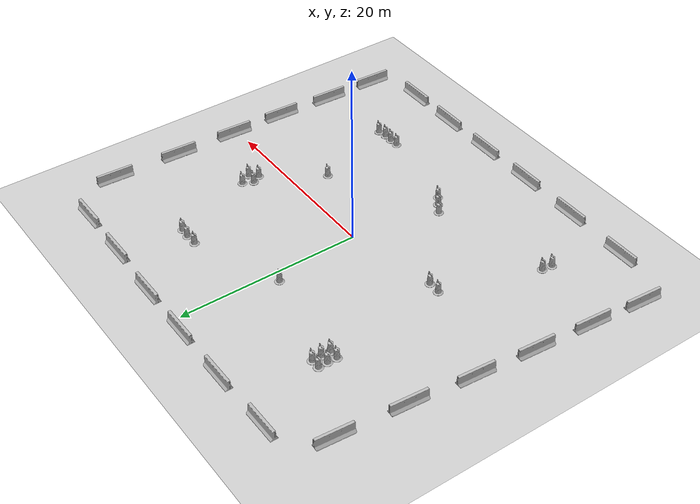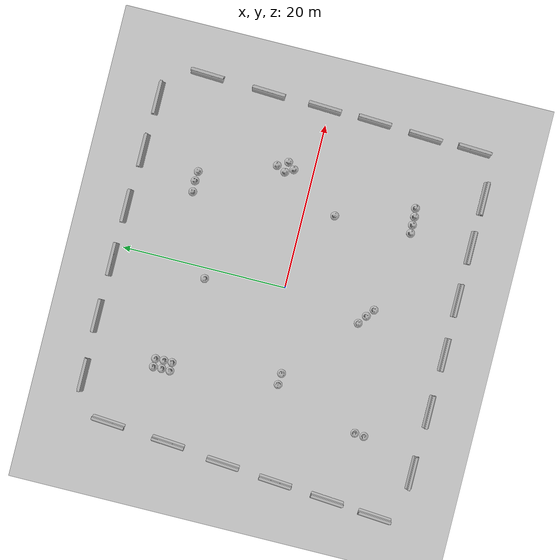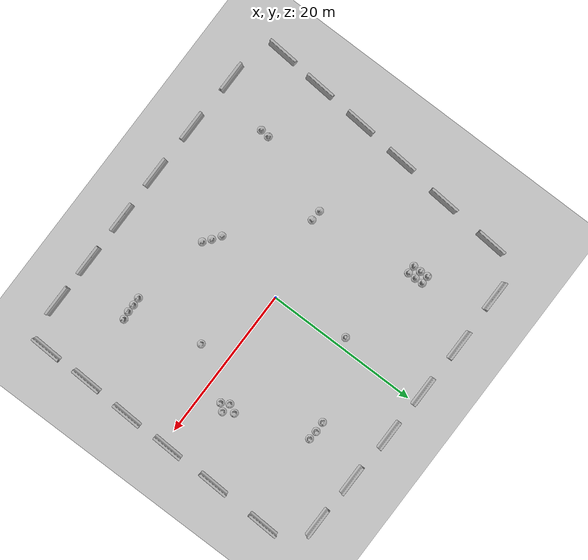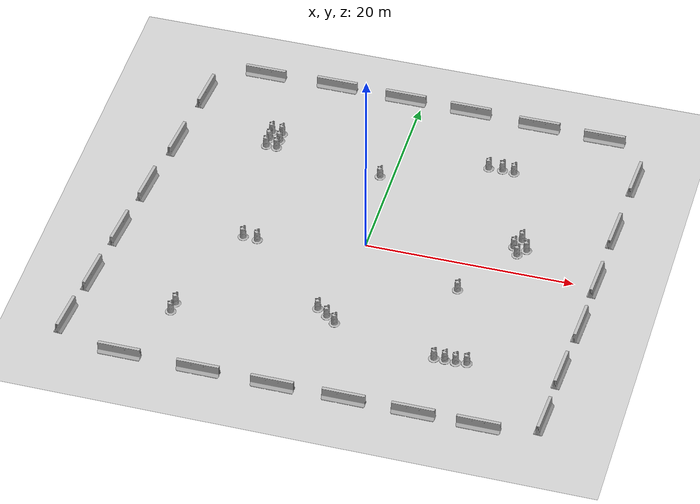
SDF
<sdf version="1.5">
 <world name="default">
  <light name="sun" type="directional">
   <pose>0 0 10 0 -0 0</pose>
   <diffuse>0.8 0.8 0.8 1</diffuse>
   <specular>0.2 0.2 0.2 1</specular>
   <attenuation>
    <range>1000</range>
    <constant>0.9</constant>
    <linear>0.01</linear>
    <quadratic>0.001</quadratic>
   </attenuation>
   <direction>-0.5 0.1 -0.9</direction>
  </light>
  <model name="ground_plane">
   <static>1</static>
   <link name="link">
    <collision name="collision">
     <geometry><plane><normal>0 0 1</normal><size>100 100</size></plane></geometry>
     <surface><friction><ode><mu>100</mu><mu2>50</mu2></ode></friction></surface>
    </collision>
    <visual name="visual">
     <cast_shadows>0</cast_shadows>
     <geometry><plane><normal>0 0 1</normal><size>100 100</size></plane></geometry>
     <material>
      <script><uri>file://media/materials/scripts/gazebo.material</uri><name>Gazebo/Grey</name></script>
     </material>
    </visual>
    <velocity_decay><linear>0</linear><angular>0</angular></velocity_decay>
   </link>
  </model>
  <physics type="ode">
   <max_step_size>0.001</max_step_size>
   <real_time_factor>1</real_time_factor>
   <real_time_update_rate>1000</real_time_update_rate>
   <gravity>0 0 -9.8</gravity>
   <magnetic_field>5.5645e-06 2.28758e-05 -4.23884e-05</magnetic_field>
  </physics>
  <scene><ambient>0.4 0.4 0.4 1</ambient><background>0.7 0.7 0.7 1</background><shadows>1</shadows></scene>
  <spherical_coordinates>
   <surface_model>EARTH_WGS84</surface_model>
   <latitude_deg>0</latitude_deg>
   <longitude_deg>0</longitude_deg>
   <elevation>0</elevation>
   <heading_deg>0</heading_deg>
  </spherical_coordinates>
  <model name="Construction Barrel">
   <link name="link">
    <inertial>
     <pose>0 0 0.4 0 -0 0</pose>
     <mass>500</mass>
     <inertia><ixx>51.2096</ixx><iyy>51.2096</iyy><izz>25</izz><ixy>0</ixy><ixz>0</ixz><iyz>0</iyz></inertia>
    </inertial>
    <collision name="collision">
     <geometry><mesh><uri>model://construction_barrel/meshes/construction_barrel.dae</uri></mesh></geometry>
    </collision>
    <visual name="visual">
     <geometry><mesh><uri>model://construction_barrel/meshes/construction_barrel.dae</uri></mesh></geometry>
    </visual>
    <velocity_decay><linear>0</linear><angular>0</angular></velocity_decay>
   </link>
   <pose>-0.937359 -10.2679 -2e-06 -7e-06 -4e-06 -0.002338</pose>
   <static>0</static>
  </model>
  <model name="Construction Barrel_1">
   <link name="link">
    <inertial>
     <pose>0 0 0.4 0 -0 0</pose>
     <mass>500</mass>
     <inertia><ixx>51.2096</ixx><iyy>51.2096</iyy><izz>25</izz><ixy>0</ixy><ixz>0</ixz><iyz>0</iyz></inertia>
    </inertial>
    <collision name="collision">
     <geometry><mesh><uri>model://construction_barrel/meshes/construction_barrel.dae</uri></mesh></geometry>
    </collision>
    <visual name="visual">
     <geometry><mesh><uri>model://construction_barrel/meshes/construction_barrel.dae</uri></mesh></geometry>
    </visual>
    <velocity_decay><linear>0</linear><angular>0</angular></velocity_decay>
   </link>
   <pose>13.0391 -12.8544 -2e-06 -7e-06 -4e-06 -0.002299</pose>
   <static>0</static>
  </model>
  <model name="Construction Barrel_3">
   <link name="link">
    <inertial>
     <pose>0 0 0.4 0 -0 0</pose>
     <mass>500</mass>
     <inertia><ixx>51.2096</ixx><iyy>51.2096</iyy><izz>25</izz><ixy>0</ixy><ixz>0</ixz><iyz>0</iyz></inertia>
    </inertial>
    <collision name="collision">
     <geometry><mesh><uri>model://construction_barrel/meshes/construction_barrel.dae</uri></mesh></geometry>
    </collision>
    <visual name="visual">
     <geometry><mesh><uri>model://construction_barrel/meshes/construction_barrel.dae</uri></mesh></geometry>
    </visual>
    <velocity_decay><linear>0</linear><angular>0</angular></velocity_decay>
   </link>
   <pose>9.83748 13.5901 -2e-06 -7e-06 -4e-06 -0.002089</pose>
   <static>0</static>
  </model>
  <model name="Construction Barrel_4">
   <link name="link">
    <inertial>
     <pose>0 0 0.4 0 -0 0</pose>
     <mass>500</mass>
     <inertia><ixx>51.2096</ixx><iyy>51.2096</iyy><izz>25</izz><ixy>0</ixy><ixz>0</ixz><iyz>0</iyz></inertia>
    </inertial>
    <collision name="collision">
     <geometry><mesh><uri>model://construction_barrel/meshes/construction_barrel.dae</uri></mesh></geometry>
    </collision>
    <visual name="visual">
     <geometry><mesh><uri>model://construction_barrel/meshes/construction_barrel.dae</uri></mesh></geometry>
    </visual>
    <velocity_decay><linear>0</linear><angular>0</angular></velocity_decay>
   </link>
   <pose>9.80969 -3.68033 -2e-06 -7e-06 -4e-06 -0.001935</pose>
   <static>0</static>
  </model>
  <model name="Construction Barrel_6">
   <link name="link">
    <inertial>
     <pose>0 0 0.4 0 -0 0</pose>
     <mass>500</mass>
     <inertia><ixx>51.2096</ixx><iyy>51.2096</iyy><izz>25</izz><ixy>0</ixy><ixz>0</ixz><iyz>0</iyz></inertia>
    </inertial>
    <collision name="collision">
     <geometry><mesh><uri>model://construction_barrel/meshes/construction_barrel.dae</uri></mesh></geometry>
    </collision>
    <visual name="visual">
     <geometry><mesh><uri>model://construction_barrel/meshes/construction_barrel.dae</uri></mesh></geometry>
    </visual>
    <velocity_decay><linear>0</linear><angular>0</angular></velocity_decay>
   </link>
   <pose>-13.0174 13.0312 0 0 0 -0.059293</pose>
   <static>0</static>
  </model>
  <model name="Construction Barrel_7">
   <link name="link">
    <inertial>
     <pose>0 0 0.4 0 -0 0</pose>
     <mass>500</mass>
     <inertia><ixx>51.2096</ixx><iyy>51.2096</iyy><izz>25</izz><ixy>0</ixy><ixz>0</ixz><iyz>0</iyz></inertia>
    </inertial>
    <collision name="collision">
     <geometry><mesh><uri>model://construction_barrel/meshes/construction_barrel.dae</uri></mesh></geometry>
    </collision>
    <visual name="visual">
     <geometry><mesh><uri>model://construction_barrel/meshes/construction_barrel.dae</uri></mesh></geometry>
    </visual>
    <velocity_decay><linear>0</linear><angular>0</angular></velocity_decay>
   </link>
   <pose>-10.0587 -2.07574 0 0 0 -0.001909</pose>
   <static>0</static>
  </model>
  <model name="Construction Barrel_9">
   <link name="link">
    <inertial>
     <pose>0 0 0.4 0 -0 0</pose>
     <mass>500</mass>
     <inertia><ixx>51.2096</ixx><iyy>51.2096</iyy><izz>25</izz><ixy>0</ixy><ixz>0</ixz><iyz>0</iyz></inertia>
    </inertial>
    <collision name="collision">
     <geometry><mesh><uri>model://construction_barrel/meshes/construction_barrel.dae</uri></mesh></geometry>
    </collision>
    <visual name="visual">
     <geometry><mesh><uri>model://construction_barrel/meshes/construction_barrel.dae</uri></mesh></geometry>
    </visual>
    <velocity_decay><linear>0</linear><angular>0</angular></velocity_decay>
   </link>
   <pose>-14.8784 -12.3318 -3e-06 -6e-06 -5e-06 -0.001776</pose>
   <static>0</static>
  </model>
  <model name="Construction Barrel_12">
   <link name="link">
    <inertial>
     <pose>0 0 0.4 0 -0 0</pose>
     <mass>500</mass>
     <inertia><ixx>51.2096</ixx><iyy>51.2096</iyy><izz>25</izz><ixy>0</ixy><ixz>0</ixz><iyz>0</iyz></inertia>
    </inertial>
    <collision name="collision">
     <geometry><mesh><uri>model://construction_barrel/meshes/construction_barrel.dae</uri></mesh></geometry>
    </collision>
    <visual name="visual">
     <geometry><mesh><uri>model://construction_barrel/meshes/construction_barrel.dae</uri></mesh></geometry>
    </visual>
    <velocity_decay><linear>0</linear><angular>0</angular></velocity_decay>
   </link>
   <pose>14.7254 3.24195 -1e-06 1e-06 -9e-06 -0.001602</pose>
   <static>0</static>
  </model>
  <model name="Construction Barrel_16">
   <link name="link">
    <inertial>
     <pose>0 0 0.4 0 -0 0</pose>
     <mass>500</mass>
     <inertia><ixx>51.2096</ixx><iyy>51.2096</iyy><izz>25</izz><ixy>0</ixy><ixz>0</ixz><iyz>0</iyz></inertia>
    </inertial>
    <collision name="collision">
     <geometry><mesh><uri>model://construction_barrel/meshes/construction_barrel.dae</uri></mesh></geometry>
    </collision>
    <visual name="visual">
     <geometry><mesh><uri>model://construction_barrel/meshes/construction_barrel.dae</uri></mesh></geometry>
    </visual>
    <velocity_decay><linear>0</linear><angular>0</angular></velocity_decay>
   </link>
   <pose>-1.25815 9.63283 -1e-06 3e-06 -2e-06 -0.001346</pose>
   <static>0</static>
  </model>
  <model name="jersey_barrier">
   <static>1</static>
   <link name="link">
    <visual name="visual">
     <geometry><mesh><uri>model://jersey_barrier/meshes/jersey_barrier.dae</uri></mesh></geometry>
    </visual>
    <collision name="upright">
     <pose>0 0 0.5715 0 -0 0</pose>
     <geometry><box><size>4.06542 0.3063 1.143</size></box></geometry>
    </collision>
    <collision name="base">
     <pose>0 0 0.032258 0 -0 0</pose>
     <geometry><box><size>4.06542 0.8107 0.064516</size></box></geometry>
    </collision>
    <collision name="base2">
     <pose>0 0 0.1 0 -0 0</pose>
     <geometry><box><size>4.06542 0.65 0.1</size></box></geometry>
    </collision>
    <collision name="base3">
     <pose>0 0 0.2 0 -0 0</pose>
     <geometry><box><size>4.06542 0.5 0.1</size></box></geometry>
    </collision>
    <collision name="left-angle">
     <pose>0 -0.224 0.2401 0.9 -0 0</pose>
     <geometry><box><size>4.06542 0.5 0.064516</size></box></geometry>
    </collision>
    <collision name="right-angle">
     <pose>0 0.224 0.2401 -0.9 0 0</pose>
     <geometry><box><size>4.06542 0.5 0.064516</size></box></geometry>
    </collision>
    <velocity_decay><linear>0</linear><angular>0</angular></velocity_decay>
   </link>
   <pose>-8.69718 21.0256 0 0 -0 0</pose>
  </model>
  <model name="jersey_barrier_0">
   <static>1</static>
   <link name="link">
    <visual name="visual">
     <geometry><mesh><uri>model://jersey_barrier/meshes/jersey_barrier.dae</uri></mesh></geometry>
    </visual>
    <collision name="upright">
     <pose>0 0 0.5715 0 -0 0</pose>
     <geometry><box><size>4.06542 0.3063 1.143</size></box></geometry>
    </collision>
    <collision name="base">
     <pose>0 0 0.032258 0 -0 0</pose>
     <geometry><box><size>4.06542 0.8107 0.064516</size></box></geometry>
    </collision>
    <collision name="base2">
     <pose>0 0 0.1 0 -0 0</pose>
     <geometry><box><size>4.06542 0.65 0.1</size></box></geometry>
    </collision>
    <collision name="base3">
     <pose>0 0 0.2 0 -0 0</pose>
     <geometry><box><size>4.06542 0.5 0.1</size></box></geometry>
    </collision>
    <collision name="left-angle">
     <pose>0 -0.224 0.2401 0.9 -0 0</pose>
     <geometry><box><size>4.06542 0.5 0.064516</size></box></geometry>
    </collision>
    <collision name="right-angle">
     <pose>0 0.224 0.2401 -0.9 0 0</pose>
     <geometry><box><size>4.06542 0.5 0.064516</size></box></geometry>
    </collision>
    <velocity_decay><linear>0</linear><angular>0</angular></velocity_decay>
   </link>
   <pose>-15.9229 20.8921 0 0 -0 0</pose>
  </model>
  <model name="jersey_barrier_1">
   <static>1</static>
   <link name="link">
    <visual name="visual">
     <geometry><mesh><uri>model://jersey_barrier/meshes/jersey_barrier.dae</uri></mesh></geometry>
    </visual>
    <collision name="upright">
     <pose>0 0 0.5715 0 -0 0</pose>
     <geometry><box><size>4.06542 0.3063 1.143</size></box></geometry>
    </collision>
    <collision name="base">
     <pose>0 0 0.032258 0 -0 0</pose>
     <geometry><box><size>4.06542 0.8107 0.064516</size></box></geometry>
    </collision>
    <collision name="base2">
     <pose>0 0 0.1 0 -0 0</pose>
     <geometry><box><size>4.06542 0.65 0.1</size></box></geometry>
    </collision>
    <collision name="base3">
     <pose>0 0 0.2 0 -0 0</pose>
     <geometry><box><size>4.06542 0.5 0.1</size></box></geometry>
    </collision>
    <collision name="left-angle">
     <pose>0 -0.224 0.2401 0.9 -0 0</pose>
     <geometry><box><size>4.06542 0.5 0.064516</size></box></geometry>
    </collision>
    <collision name="right-angle">
     <pose>0 0.224 0.2401 -0.9 0 0</pose>
     <geometry><box><size>4.06542 0.5 0.064516</size></box></geometry>
    </collision>
    <velocity_decay><linear>0</linear><angular>0</angular></velocity_decay>
   </link>
   <pose>-23.4173 -10.9848 0 0 -0 1.49459</pose>
  </model>
  <model name="jersey_barrier_2">
   <static>1</static>
   <link name="link">
    <visual name="visual">
     <geometry><mesh><uri>model://jersey_barrier/meshes/jersey_barrier.dae</uri></mesh></geometry>
    </visual>
    <collision name="upright">
     <pose>0 0 0.5715 0 -0 0</pose>
     <geometry><box><size>4.06542 0.3063 1.143</size></box></geometry>
    </collision>
    <collision name="base">
     <pose>0 0 0.032258 0 -0 0</pose>
     <geometry><box><size>4.06542 0.8107 0.064516</size></box></geometry>
    </collision>
    <collision name="base2">
     <pose>0 0 0.1 0 -0 0</pose>
     <geometry><box><size>4.06542 0.65 0.1</size></box></geometry>
    </collision>
    <collision name="base3">
     <pose>0 0 0.2 0 -0 0</pose>
     <geometry><box><size>4.06542 0.5 0.1</size></box></geometry>
    </collision>
    <collision name="left-angle">
     <pose>0 -0.224 0.2401 0.9 -0 0</pose>
     <geometry><box><size>4.06542 0.5 0.064516</size></box></geometry>
    </collision>
    <collision name="right-angle">
     <pose>0 0.224 0.2401 -0.9 0 0</pose>
     <geometry><box><size>4.06542 0.5 0.064516</size></box></geometry>
    </collision>
    <velocity_decay><linear>0</linear><angular>0</angular></velocity_decay>
   </link>
   <pose>-17.8085 -20.1254 0 0 -0 0</pose>
  </model>
  <model name="jersey_barrier_3">
   <static>1</static>
   <link name="link">
    <visual name="visual">
     <geometry><mesh><uri>model://jersey_barrier/meshes/jersey_barrier.dae</uri></mesh></geometry>
    </visual>
    <collision name="upright">
     <pose>0 0 0.5715 0 -0 0</pose>
     <geometry><box><size>4.06542 0.3063 1.143</size></box></geometry>
    </collision>
    <collision name="base">
     <pose>0 0 0.032258 0 -0 0</pose>
     <geometry><box><size>4.06542 0.8107 0.064516</size></box></geometry>
    </collision>
    <collision name="base2">
     <pose>0 0 0.1 0 -0 0</pose>
     <geometry><box><size>4.06542 0.65 0.1</size></box></geometry>
    </collision>
    <collision name="base3">
     <pose>0 0 0.2 0 -0 0</pose>
     <geometry><box><size>4.06542 0.5 0.1</size></box></geometry>
    </collision>
    <collision name="left-angle">
     <pose>0 -0.224 0.2401 0.9 -0 0</pose>
     <geometry><box><size>4.06542 0.5 0.064516</size></box></geometry>
    </collision>
    <collision name="right-angle">
     <pose>0 0.224 0.2401 -0.9 0 0</pose>
     <geometry><box><size>4.06542 0.5 0.064516</size></box></geometry>
    </collision>
    <velocity_decay><linear>0</linear><angular>0</angular></velocity_decay>
   </link>
   <pose>10.0069 -20.4469 0 0 -0 0</pose>
  </model>
  <model name="jersey_barrier_4">
   <static>1</static>
   <link name="link">
    <visual name="visual">
     <geometry><mesh><uri>model://jersey_barrier/meshes/jersey_barrier.dae</uri></mesh></geometry>
    </visual>
    <collision name="upright">
     <pose>0 0 0.5715 0 -0 0</pose>
     <geometry><box><size>4.06542 0.3063 1.143</size></box></geometry>
    </collision>
    <collision name="base">
     <pose>0 0 0.032258 0 -0 0</pose>
     <geometry><box><size>4.06542 0.8107 0.064516</size></box></geometry>
    </collision>
    <collision name="base2">
     <pose>0 0 0.1 0 -0 0</pose>
     <geometry><box><size>4.06542 0.65 0.1</size></box></geometry>
    </collision>
    <collision name="base3">
     <pose>0 0 0.2 0 -0 0</pose>
     <geometry><box><size>4.06542 0.5 0.1</size></box></geometry>
    </collision>
    <collision name="left-angle">
     <pose>0 -0.224 0.2401 0.9 -0 0</pose>
     <geometry><box><size>4.06542 0.5 0.064516</size></box></geometry>
    </collision>
    <collision name="right-angle">
     <pose>0 0.224 0.2401 -0.9 0 0</pose>
     <geometry><box><size>4.06542 0.5 0.064516</size></box></geometry>
    </collision>
    <velocity_decay><linear>0</linear><angular>0</angular></velocity_decay>
   </link>
   <pose>21.6079 -11.909 0 0 -0 1.52298</pose>
  </model>
  <audio><device>default</device></audio>
  <model name="jersey_barrier_2_clone">
   <static>1</static>
   <link name="link">
    <visual name="visual">
     <geometry><mesh><uri>model://jersey_barrier/meshes/jersey_barrier.dae</uri></mesh></geometry>
    </visual>
    <collision name="upright">
     <pose>0 0 0.5715 0 -0 0</pose>
     <geometry><box><size>4.06542 0.3063 1.143</size></box></geometry>
    </collision>
    <collision name="base">
     <pose>0 0 0.032258 0 -0 0</pose>
     <geometry><box><size>4.06542 0.8107 0.064516</size></box></geometry>
    </collision>
    <collision name="base2">
     <pose>0 0 0.1 0 -0 0</pose>
     <geometry><box><size>4.06542 0.65 0.1</size></box></geometry>
    </collision>
    <collision name="base3">
     <pose>0 0 0.2 0 -0 0</pose>
     <geometry><box><size>4.06542 0.5 0.1</size></box></geometry>
    </collision>
    <collision name="left-angle">
     <pose>0 -0.224 0.2401 0.9 -0 0</pose>
     <geometry><box><size>4.06542 0.5 0.064516</size></box></geometry>
    </collision>
    <collision name="right-angle">
     <pose>0 0.224 0.2401 -0.9 0 0</pose>
     <geometry><box><size>4.06542 0.5 0.064516</size></box></geometry>
    </collision>
    <velocity_decay><linear>0</linear><angular>0</angular></velocity_decay>
   </link>
   <pose>-10.2306 -20.3476 0 0 -0 0</pose>
  </model>
  <model name="jersey_barrier_2_clone_0">
   <static>1</static>
   <link name="link">
    <visual name="visual">
     <geometry><mesh><uri>model://jersey_barrier/meshes/jersey_barrier.dae</uri></mesh></geometry>
    </visual>
    <collision name="upright">
     <pose>0 0 0.5715 0 -0 0</pose>
     <geometry><box><size>4.06542 0.3063 1.143</size></box></geometry>
    </collision>
    <collision name="base">
     <pose>0 0 0.032258 0 -0 0</pose>
     <geometry><box><size>4.06542 0.8107 0.064516</size></box></geometry>
    </collision>
    <collision name="base2">
     <pose>0 0 0.1 0 -0 0</pose>
     <geometry><box><size>4.06542 0.65 0.1</size></box></geometry>
    </collision>
    <collision name="base3">
     <pose>0 0 0.2 0 -0 0</pose>
     <geometry><box><size>4.06542 0.5 0.1</size></box></geometry>
    </collision>
    <collision name="left-angle">
     <pose>0 -0.224 0.2401 0.9 -0 0</pose>
     <geometry><box><size>4.06542 0.5 0.064516</size></box></geometry>
    </collision>
    <collision name="right-angle">
     <pose>0 0.224 0.2401 -0.9 0 0</pose>
     <geometry><box><size>4.06542 0.5 0.064516</size></box></geometry>
    </collision>
    <velocity_decay><linear>0</linear><angular>0</angular></velocity_decay>
   </link>
   <pose>-3.17145 -20.4608 0 0 -0 0</pose>
  </model>
  <model name="jersey_barrier_2_clone_1">
   <static>1</static>
   <link name="link">
    <visual name="visual">
     <geometry><mesh><uri>model://jersey_barrier/meshes/jersey_barrier.dae</uri></mesh></geometry>
    </visual>
    <collision name="upright">
     <pose>0 0 0.5715 0 -0 0</pose>
     <geometry><box><size>4.06542 0.3063 1.143</size></box></geometry>
    </collision>
    <collision name="base">
     <pose>0 0 0.032258 0 -0 0</pose>
     <geometry><box><size>4.06542 0.8107 0.064516</size></box></geometry>
    </collision>
    <collision name="base2">
     <pose>0 0 0.1 0 -0 0</pose>
     <geometry><box><size>4.06542 0.65 0.1</size></box></geometry>
    </collision>
    <collision name="base3">
     <pose>0 0 0.2 0 -0 0</pose>
     <geometry><box><size>4.06542 0.5 0.1</size></box></geometry>
    </collision>
    <collision name="left-angle">
     <pose>0 -0.224 0.2401 0.9 -0 0</pose>
     <geometry><box><size>4.06542 0.5 0.064516</size></box></geometry>
    </collision>
    <collision name="right-angle">
     <pose>0 0.224 0.2401 -0.9 0 0</pose>
     <geometry><box><size>4.06542 0.5 0.064516</size></box></geometry>
    </collision>
    <velocity_decay><linear>0</linear><angular>0</angular></velocity_decay>
   </link>
   <pose>3.51104 -20.411 0 0 -0 0</pose>
  </model>
  <model name="jersey_barrier_1_clone">
   <static>1</static>
   <link name="link">
    <visual name="visual">
     <geometry><mesh><uri>model://jersey_barrier/meshes/jersey_barrier.dae</uri></mesh></geometry>
    </visual>
    <collision name="upright">
     <pose>0 0 0.5715 0 -0 0</pose>
     <geometry><box><size>4.06542 0.3063 1.143</size></box></geometry>
    </collision>
    <collision name="base">
     <pose>0 0 0.032258 0 -0 0</pose>
     <geometry><box><size>4.06542 0.8107 0.064516</size></box></geometry>
    </collision>
    <collision name="base2">
     <pose>0 0 0.1 0 -0 0</pose>
     <geometry><box><size>4.06542 0.65 0.1</size></box></geometry>
    </collision>
    <collision name="base3">
     <pose>0 0 0.2 0 -0 0</pose>
     <geometry><box><size>4.06542 0.5 0.1</size></box></geometry>
    </collision>
    <collision name="left-angle">
     <pose>0 -0.224 0.2401 0.9 -0 0</pose>
     <geometry><box><size>4.06542 0.5 0.064516</size></box></geometry>
    </collision>
    <collision name="right-angle">
     <pose>0 0.224 0.2401 -0.9 0 0</pose>
     <geometry><box><size>4.06542 0.5 0.064516</size></box></geometry>
    </collision>
    <velocity_decay><linear>0</linear><angular>0</angular></velocity_decay>
   </link>
   <pose>-22.8678 -4.46741 0 0 -0 1.49459</pose>
  </model>
  <model name="jersey_barrier_1_clone_0">
   <static>1</static>
   <link name="link">
    <visual name="visual">
     <geometry><mesh><uri>model://jersey_barrier/meshes/jersey_barrier.dae</uri></mesh></geometry>
    </visual>
    <collision name="upright">
     <pose>0 0 0.5715 0 -0 0</pose>
     <geometry><box><size>4.06542 0.3063 1.143</size></box></geometry>
    </collision>
    <collision name="base">
     <pose>0 0 0.032258 0 -0 0</pose>
     <geometry><box><size>4.06542 0.8107 0.064516</size></box></geometry>
    </collision>
    <collision name="base2">
     <pose>0 0 0.1 0 -0 0</pose>
     <geometry><box><size>4.06542 0.65 0.1</size></box></geometry>
    </collision>
    <collision name="base3">
     <pose>0 0 0.2 0 -0 0</pose>
     <geometry><box><size>4.06542 0.5 0.1</size></box></geometry>
    </collision>
    <collision name="left-angle">
     <pose>0 -0.224 0.2401 0.9 -0 0</pose>
     <geometry><box><size>4.06542 0.5 0.064516</size></box></geometry>
    </collision>
    <collision name="right-angle">
     <pose>0 0.224 0.2401 -0.9 0 0</pose>
     <geometry><box><size>4.06542 0.5 0.064516</size></box></geometry>
    </collision>
    <velocity_decay><linear>0</linear><angular>0</angular></velocity_decay>
   </link>
   <pose>-22.2377 2.14107 0 0 -0 1.49459</pose>
  </model>
  <model name="jersey_barrier_1_clone_1">
   <static>1</static>
   <link name="link">
    <visual name="visual">
     <geometry><mesh><uri>model://jersey_barrier/meshes/jersey_barrier.dae</uri></mesh></geometry>
    </visual>
    <collision name="upright">
     <pose>0 0 0.5715 0 -0 0</pose>
     <geometry><box><size>4.06542 0.3063 1.143</size></box></geometry>
    </collision>
    <collision name="base">
     <pose>0 0 0.032258 0 -0 0</pose>
     <geometry><box><size>4.06542 0.8107 0.064516</size></box></geometry>
    </collision>
    <collision name="base2">
     <pose>0 0 0.1 0 -0 0</pose>
     <geometry><box><size>4.06542 0.65 0.1</size></box></geometry>
    </collision>
    <collision name="base3">
     <pose>0 0 0.2 0 -0 0</pose>
     <geometry><box><size>4.06542 0.5 0.1</size></box></geometry>
    </collision>
    <collision name="left-angle">
     <pose>0 -0.224 0.2401 0.9 -0 0</pose>
     <geometry><box><size>4.06542 0.5 0.064516</size></box></geometry>
    </collision>
    <collision name="right-angle">
     <pose>0 0.224 0.2401 -0.9 0 0</pose>
     <geometry><box><size>4.06542 0.5 0.064516</size></box></geometry>
    </collision>
    <velocity_decay><linear>0</linear><angular>0</angular></velocity_decay>
   </link>
   <pose>-21.4121 9.09407 0 0 -0 1.49459</pose>
  </model>
  <model name="jersey_barrier_1_clone_2">
   <static>1</static>
   <link name="link">
    <visual name="visual">
     <geometry><mesh><uri>model://jersey_barrier/meshes/jersey_barrier.dae</uri></mesh></geometry>
    </visual>
    <collision name="upright">
     <pose>0 0 0.5715 0 -0 0</pose>
     <geometry><box><size>4.06542 0.3063 1.143</size></box></geometry>
    </collision>
    <collision name="base">
     <pose>0 0 0.032258 0 -0 0</pose>
     <geometry><box><size>4.06542 0.8107 0.064516</size></box></geometry>
    </collision>
    <collision name="base2">
     <pose>0 0 0.1 0 -0 0</pose>
     <geometry><box><size>4.06542 0.65 0.1</size></box></geometry>
    </collision>
    <collision name="base3">
     <pose>0 0 0.2 0 -0 0</pose>
     <geometry><box><size>4.06542 0.5 0.1</size></box></geometry>
    </collision>
    <collision name="left-angle">
     <pose>0 -0.224 0.2401 0.9 -0 0</pose>
     <geometry><box><size>4.06542 0.5 0.064516</size></box></geometry>
    </collision>
    <collision name="right-angle">
     <pose>0 0.224 0.2401 -0.9 0 0</pose>
     <geometry><box><size>4.06542 0.5 0.064516</size></box></geometry>
    </collision>
    <velocity_decay><linear>0</linear><angular>0</angular></velocity_decay>
   </link>
   <pose>-20.7737 16.6245 0 0 -0 1.49459</pose>
  </model>
  <model name="jersey_barrier_3_clone">
   <static>1</static>
   <link name="link">
    <visual name="visual">
     <geometry><mesh><uri>model://jersey_barrier/meshes/jersey_barrier.dae</uri></mesh></geometry>
    </visual>
    <collision name="upright">
     <pose>0 0 0.5715 0 -0 0</pose>
     <geometry><box><size>4.06542 0.3063 1.143</size></box></geometry>
    </collision>
    <collision name="base">
     <pose>0 0 0.032258 0 -0 0</pose>
     <geometry><box><size>4.06542 0.8107 0.064516</size></box></geometry>
    </collision>
    <collision name="base2">
     <pose>0 0 0.1 0 -0 0</pose>
     <geometry><box><size>4.06542 0.65 0.1</size></box></geometry>
    </collision>
    <collision name="base3">
     <pose>0 0 0.2 0 -0 0</pose>
     <geometry><box><size>4.06542 0.5 0.1</size></box></geometry>
    </collision>
    <collision name="left-angle">
     <pose>0 -0.224 0.2401 0.9 -0 0</pose>
     <geometry><box><size>4.06542 0.5 0.064516</size></box></geometry>
    </collision>
    <collision name="right-angle">
     <pose>0 0.224 0.2401 -0.9 0 0</pose>
     <geometry><box><size>4.06542 0.5 0.064516</size></box></geometry>
    </collision>
    <velocity_decay><linear>0</linear><angular>0</angular></velocity_decay>
   </link>
   <pose>-1.70102 20.9112 0 0 -0 0</pose>
  </model>
  <model name="jersey_barrier_3_clone_0">
   <static>1</static>
   <link name="link">
    <visual name="visual">
     <geometry><mesh><uri>model://jersey_barrier/meshes/jersey_barrier.dae</uri></mesh></geometry>
    </visual>
    <collision name="upright">
     <pose>0 0 0.5715 0 -0 0</pose>
     <geometry><box><size>4.06542 0.3063 1.143</size></box></geometry>
    </collision>
    <collision name="base">
     <pose>0 0 0.032258 0 -0 0</pose>
     <geometry><box><size>4.06542 0.8107 0.064516</size></box></geometry>
    </collision>
    <collision name="base2">
     <pose>0 0 0.1 0 -0 0</pose>
     <geometry><box><size>4.06542 0.65 0.1</size></box></geometry>
    </collision>
    <collision name="base3">
     <pose>0 0 0.2 0 -0 0</pose>
     <geometry><box><size>4.06542 0.5 0.1</size></box></geometry>
    </collision>
    <collision name="left-angle">
     <pose>0 -0.224 0.2401 0.9 -0 0</pose>
     <geometry><box><size>4.06542 0.5 0.064516</size></box></geometry>
    </collision>
    <collision name="right-angle">
     <pose>0 0.224 0.2401 -0.9 0 0</pose>
     <geometry><box><size>4.06542 0.5 0.064516</size></box></geometry>
    </collision>
    <velocity_decay><linear>0</linear><angular>0</angular></velocity_decay>
   </link>
   <pose>4.89552 20.8004 0 0 -0 0</pose>
  </model>
  <model name="jersey_barrier_3_clone_1">
   <static>1</static>
   <link name="link">
    <visual name="visual">
     <geometry><mesh><uri>model://jersey_barrier/meshes/jersey_barrier.dae</uri></mesh></geometry>
    </visual>
    <collision name="upright">
     <pose>0 0 0.5715 0 -0 0</pose>
     <geometry><box><size>4.06542 0.3063 1.143</size></box></geometry>
    </collision>
    <collision name="base">
     <pose>0 0 0.032258 0 -0 0</pose>
     <geometry><box><size>4.06542 0.8107 0.064516</size></box></geometry>
    </collision>
    <collision name="base2">
     <pose>0 0 0.1 0 -0 0</pose>
     <geometry><box><size>4.06542 0.65 0.1</size></box></geometry>
    </collision>
    <collision name="base3">
     <pose>0 0 0.2 0 -0 0</pose>
     <geometry><box><size>4.06542 0.5 0.1</size></box></geometry>
    </collision>
    <collision name="left-angle">
     <pose>0 -0.224 0.2401 0.9 -0 0</pose>
     <geometry><box><size>4.06542 0.5 0.064516</size></box></geometry>
    </collision>
    <collision name="right-angle">
     <pose>0 0.224 0.2401 -0.9 0 0</pose>
     <geometry><box><size>4.06542 0.5 0.064516</size></box></geometry>
    </collision>
    <velocity_decay><linear>0</linear><angular>0</angular></velocity_decay>
   </link>
   <pose>11.8222 20.4653 0 0 -0 0</pose>
  </model>
  <model name="jersey_barrier_4_clone">
   <static>1</static>
   <link name="link">
    <visual name="visual">
     <geometry><mesh><uri>model://jersey_barrier/meshes/jersey_barrier.dae</uri></mesh></geometry>
    </visual>
    <collision name="upright">
     <pose>0 0 0.5715 0 -0 0</pose>
     <geometry><box><size>4.06542 0.3063 1.143</size></box></geometry>
    </collision>
    <collision name="base">
     <pose>0 0 0.032258 0 -0 0</pose>
     <geometry><box><size>4.06542 0.8107 0.064516</size></box></geometry>
    </collision>
    <collision name="base2">
     <pose>0 0 0.1 0 -0 0</pose>
     <geometry><box><size>4.06542 0.65 0.1</size></box></geometry>
    </collision>
    <collision name="base3">
     <pose>0 0 0.2 0 -0 0</pose>
     <geometry><box><size>4.06542 0.5 0.1</size></box></geometry>
    </collision>
    <collision name="left-angle">
     <pose>0 -0.224 0.2401 0.9 -0 0</pose>
     <geometry><box><size>4.06542 0.5 0.064516</size></box></geometry>
    </collision>
    <collision name="right-angle">
     <pose>0 0.224 0.2401 -0.9 0 0</pose>
     <geometry><box><size>4.06542 0.5 0.064516</size></box></geometry>
    </collision>
    <velocity_decay><linear>0</linear><angular>0</angular></velocity_decay>
   </link>
   <pose>21.9591 -5.59202 0 0 -0 1.52298</pose>
  </model>
  <model name="jersey_barrier_4_clone_0">
   <static>1</static>
   <link name="link">
    <visual name="visual">
     <geometry><mesh><uri>model://jersey_barrier/meshes/jersey_barrier.dae</uri></mesh></geometry>
    </visual>
    <collision name="upright">
     <pose>0 0 0.5715 0 -0 0</pose>
     <geometry><box><size>4.06542 0.3063 1.143</size></box></geometry>
    </collision>
    <collision name="base">
     <pose>0 0 0.032258 0 -0 0</pose>
     <geometry><box><size>4.06542 0.8107 0.064516</size></box></geometry>
    </collision>
    <collision name="base2">
     <pose>0 0 0.1 0 -0 0</pose>
     <geometry><box><size>4.06542 0.65 0.1</size></box></geometry>
    </collision>
    <collision name="base3">
     <pose>0 0 0.2 0 -0 0</pose>
     <geometry><box><size>4.06542 0.5 0.1</size></box></geometry>
    </collision>
    <collision name="left-angle">
     <pose>0 -0.224 0.2401 0.9 -0 0</pose>
     <geometry><box><size>4.06542 0.5 0.064516</size></box></geometry>
    </collision>
    <collision name="right-angle">
     <pose>0 0.224 0.2401 -0.9 0 0</pose>
     <geometry><box><size>4.06542 0.5 0.064516</size></box></geometry>
    </collision>
    <velocity_decay><linear>0</linear><angular>0</angular></velocity_decay>
   </link>
   <pose>22.0607 0.586127 0 0 -0 1.52298</pose>
  </model>
  <model name="jersey_barrier_4_clone_1">
   <static>1</static>
   <link name="link">
    <visual name="visual">
     <geometry><mesh><uri>model://jersey_barrier/meshes/jersey_barrier.dae</uri></mesh></geometry>
    </visual>
    <collision name="upright">
     <pose>0 0 0.5715 0 -0 0</pose>
     <geometry><box><size>4.06542 0.3063 1.143</size></box></geometry>
    </collision>
    <collision name="base">
     <pose>0 0 0.032258 0 -0 0</pose>
     <geometry><box><size>4.06542 0.8107 0.064516</size></box></geometry>
    </collision>
    <collision name="base2">
     <pose>0 0 0.1 0 -0 0</pose>
     <geometry><box><size>4.06542 0.65 0.1</size></box></geometry>
    </collision>
    <collision name="base3">
     <pose>0 0 0.2 0 -0 0</pose>
     <geometry><box><size>4.06542 0.5 0.1</size></box></geometry>
    </collision>
    <collision name="left-angle">
     <pose>0 -0.224 0.2401 0.9 -0 0</pose>
     <geometry><box><size>4.06542 0.5 0.064516</size></box></geometry>
    </collision>
    <collision name="right-angle">
     <pose>0 0.224 0.2401 -0.9 0 0</pose>
     <geometry><box><size>4.06542 0.5 0.064516</size></box></geometry>
    </collision>
    <velocity_decay><linear>0</linear><angular>0</angular></velocity_decay>
   </link>
   <pose>22.2227 7.54439 0 0 -0 1.52298</pose>
  </model>
  <model name="jersey_barrier_4_clone_1_clone">
   <static>1</static>
   <link name="link">
    <visual name="visual">
     <geometry><mesh><uri>model://jersey_barrier/meshes/jersey_barrier.dae</uri></mesh></geometry>
    </visual>
    <collision name="upright">
     <pose>0 0 0.5715 0 -0 0</pose>
     <geometry><box><size>4.06542 0.3063 1.143</size></box></geometry>
    </collision>
    <collision name="base">
     <pose>0 0 0.032258 0 -0 0</pose>
     <geometry><box><size>4.06542 0.8107 0.064516</size></box></geometry>
    </collision>
    <collision name="base2">
     <pose>0 0 0.1 0 -0 0</pose>
     <geometry><box><size>4.06542 0.65 0.1</size></box></geometry>
    </collision>
    <collision name="base3">
     <pose>0 0 0.2 0 -0 0</pose>
     <geometry><box><size>4.06542 0.5 0.1</size></box></geometry>
    </collision>
    <collision name="left-angle">
     <pose>0 -0.224 0.2401 0.9 -0 0</pose>
     <geometry><box><size>4.06542 0.5 0.064516</size></box></geometry>
    </collision>
    <collision name="right-angle">
     <pose>0 0.224 0.2401 -0.9 0 0</pose>
     <geometry><box><size>4.06542 0.5 0.064516</size></box></geometry>
    </collision>
    <velocity_decay><linear>0</linear><angular>0</angular></velocity_decay>
   </link>
   <pose>22.4998 15.1658 0 0 -0 1.52298</pose>
  </model>
  <model name="jersey_barrier_3_clone_1_clone">
   <static>1</static>
   <link name="link">
    <visual name="visual">
     <geometry><mesh><uri>model://jersey_barrier/meshes/jersey_barrier.dae</uri></mesh></geometry>
    </visual>
    <collision name="upright">
     <pose>0 0 0.5715 0 -0 0</pose>
     <geometry><box><size>4.06542 0.3063 1.143</size></box></geometry>
    </collision>
    <collision name="base">
     <pose>0 0 0.032258 0 -0 0</pose>
     <geometry><box><size>4.06542 0.8107 0.064516</size></box></geometry>
    </collision>
    <collision name="base2">
     <pose>0 0 0.1 0 -0 0</pose>
     <geometry><box><size>4.06542 0.65 0.1</size></box></geometry>
    </collision>
    <collision name="base3">
     <pose>0 0 0.2 0 -0 0</pose>
     <geometry><box><size>4.06542 0.5 0.1</size></box></geometry>
    </collision>
    <collision name="left-angle">
     <pose>0 -0.224 0.2401 0.9 -0 0</pose>
     <geometry><box><size>4.06542 0.5 0.064516</size></box></geometry>
    </collision>
    <collision name="right-angle">
     <pose>0 0.224 0.2401 -0.9 0 0</pose>
     <geometry><box><size>4.06542 0.5 0.064516</size></box></geometry>
    </collision>
    <velocity_decay><linear>0</linear><angular>0</angular></velocity_decay>
   </link>
   <pose>18.3516 20.2619 0 0 -0 0</pose>
  </model>
  <model name="jersey_barrier_3_clone_2">
   <static>1</static>
   <link name="link">
    <visual name="visual">
     <geometry><mesh><uri>model://jersey_barrier/meshes/jersey_barrier.dae</uri></mesh></geometry>
    </visual>
    <collision name="upright">
     <pose>0 0 0.5715 0 -0 0</pose>
     <geometry><box><size>4.06542 0.3063 1.143</size></box></geometry>
    </collision>
    <collision name="base">
     <pose>0 0 0.032258 0 -0 0</pose>
     <geometry><box><size>4.06542 0.8107 0.064516</size></box></geometry>
    </collision>
    <collision name="base2">
     <pose>0 0 0.1 0 -0 0</pose>
     <geometry><box><size>4.06542 0.65 0.1</size></box></geometry>
    </collision>
    <collision name="base3">
     <pose>0 0 0.2 0 -0 0</pose>
     <geometry><box><size>4.06542 0.5 0.1</size></box></geometry>
    </collision>
    <collision name="left-angle">
     <pose>0 -0.224 0.2401 0.9 -0 0</pose>
     <geometry><box><size>4.06542 0.5 0.064516</size></box></geometry>
    </collision>
    <collision name="right-angle">
     <pose>0 0.224 0.2401 -0.9 0 0</pose>
     <geometry><box><size>4.06542 0.5 0.064516</size></box></geometry>
    </collision>
    <velocity_decay><linear>0</linear><angular>0</angular></velocity_decay>
   </link>
   <pose>16.0664 -20.4923 0 0 -0 0</pose>
  </model>
  <model name="jersey_barrier_4_clone_2">
   <static>1</static>
   <link name="link">
    <visual name="visual">
     <geometry><mesh><uri>model://jersey_barrier/meshes/jersey_barrier.dae</uri></mesh></geometry>
    </visual>
    <collision name="upright">
     <pose>0 0 0.5715 0 -0 0</pose>
     <geometry><box><size>4.06542 0.3063 1.143</size></box></geometry>
    </collision>
    <collision name="base">
     <pose>0 0 0.032258 0 -0 0</pose>
     <geometry><box><size>4.06542 0.8107 0.064516</size></box></geometry>
    </collision>
    <collision name="base2">
     <pose>0 0 0.1 0 -0 0</pose>
     <geometry><box><size>4.06542 0.65 0.1</size></box></geometry>
    </collision>
    <collision name="base3">
     <pose>0 0 0.2 0 -0 0</pose>
     <geometry><box><size>4.06542 0.5 0.1</size></box></geometry>
    </collision>
    <collision name="left-angle">
     <pose>0 -0.224 0.2401 0.9 -0 0</pose>
     <geometry><box><size>4.06542 0.5 0.064516</size></box></geometry>
    </collision>
    <collision name="right-angle">
     <pose>0 0.224 0.2401 -0.9 0 0</pose>
     <geometry><box><size>4.06542 0.5 0.064516</size></box></geometry>
    </collision>
    <velocity_decay><linear>0</linear><angular>0</angular></velocity_decay>
   </link>
   <pose>21.4847 -18 0 0 -0 1.52298</pose>
  </model>
  <model name="jersey_barrier_1_clone_3">
   <static>1</static>
   <link name="link">
    <visual name="visual">
     <geometry><mesh><uri>model://jersey_barrier/meshes/jersey_barrier.dae</uri></mesh></geometry>
    </visual>
    <collision name="upright">
     <pose>0 0 0.5715 0 -0 0</pose>
     <geometry><box><size>4.06542 0.3063 1.143</size></box></geometry>
    </collision>
    <collision name="base">
     <pose>0 0 0.032258 0 -0 0</pose>
     <geometry><box><size>4.06542 0.8107 0.064516</size></box></geometry>
    </collision>
    <collision name="base2">
     <pose>0 0 0.1 0 -0 0</pose>
     <geometry><box><size>4.06542 0.65 0.1</size></box></geometry>
    </collision>
    <collision name="base3">
     <pose>0 0 0.2 0 -0 0</pose>
     <geometry><box><size>4.06542 0.5 0.1</size></box></geometry>
    </collision>
    <collision name="left-angle">
     <pose>0 -0.224 0.2401 0.9 -0 0</pose>
     <geometry><box><size>4.06542 0.5 0.064516</size></box></geometry>
    </collision>
    <collision name="right-angle">
     <pose>0 0.224 0.2401 -0.9 0 0</pose>
     <geometry><box><size>4.06542 0.5 0.064516</size></box></geometry>
    </collision>
    <velocity_decay><linear>0</linear><angular>0</angular></velocity_decay>
   </link>
   <pose>-24 -17 0 0 -0 1.49459</pose>
  </model>
  <model name="Construction Barrel_1_clone">
   <link name="link">
    <inertial>
     <pose>0 0 0.4 0 -0 0</pose>
     <mass>500</mass>
     <inertia><ixx>51.2096</ixx><iyy>51.2096</iyy><izz>25</izz><ixy>0</ixy><ixz>0</ixz><iyz>0</iyz></inertia>
    </inertial>
    <collision name="collision">
     <geometry><mesh><uri>model://construction_barrel/meshes/construction_barrel.dae</uri></mesh></geometry>
    </collision>
    <visual name="visual">
     <geometry><mesh><uri>model://construction_barrel/meshes/construction_barrel.dae</uri></mesh></geometry>
    </visual>
    <velocity_decay><linear>0</linear><angular>0</angular></velocity_decay>
   </link>
   <pose>12.0121 -12.993 0 0 -0 0.015482</pose>
   <static>0</static>
  </model>
  <model name="Construction Barrel_1_clone_0">
   <link name="link">
    <inertial>
     <pose>0 0 0.4 0 -0 0</pose>
     <mass>500</mass>
     <inertia><ixx>51.2096</ixx><iyy>51.2096</iyy><izz>25</izz><ixy>0</ixy><ixz>0</ixz><iyz>0</iyz></inertia>
    </inertial>
    <collision name="collision">
     <geometry><mesh><uri>model://construction_barrel/meshes/construction_barrel.dae</uri></mesh></geometry>
    </collision>
    <visual name="visual">
     <geometry><mesh><uri>model://construction_barrel/meshes/construction_barrel.dae</uri></mesh></geometry>
    </visual>
    <velocity_decay><linear>0</linear><angular>0</angular></velocity_decay>
   </link>
   <pose>10.9971 -12.9786 -1e-06 1e-06 -9e-06 0.081028</pose>
   <static>0</static>
  </model>
  <model name="Construction Barrel_1_clone_1">
   <link name="link">
    <inertial>
     <pose>0 0 0.4 0 -0 0</pose>
     <mass>500</mass>
     <inertia><ixx>51.2096</ixx><iyy>51.2096</iyy><izz>25</izz><ixy>0</ixy><ixz>0</ixz><iyz>0</iyz></inertia>
    </inertial>
    <collision name="collision">
     <geometry><mesh><uri>model://construction_barrel/meshes/construction_barrel.dae</uri></mesh></geometry>
    </collision>
    <visual name="visual">
     <geometry><mesh><uri>model://construction_barrel/meshes/construction_barrel.dae</uri></mesh></geometry>
    </visual>
    <velocity_decay><linear>0</linear><angular>0</angular></velocity_decay>
   </link>
   <pose>9.97868 -13.0112 0 1e-06 1e-06 -0.056119</pose>
   <static>0</static>
  </model>
  <model name="Construction Barrel_1_clone_2">
   <link name="link">
    <inertial>
     <pose>0 0 0.4 0 -0 0</pose>
     <mass>500</mass>
     <inertia><ixx>51.2096</ixx><iyy>51.2096</iyy><izz>25</izz><ixy>0</ixy><ixz>0</ixz><iyz>0</iyz></inertia>
    </inertial>
    <collision name="collision">
     <geometry><mesh><uri>model://construction_barrel/meshes/construction_barrel.dae</uri></mesh></geometry>
    </collision>
    <visual name="visual">
     <geometry><mesh><uri>model://construction_barrel/meshes/construction_barrel.dae</uri></mesh></geometry>
    </visual>
    <velocity_decay><linear>0</linear><angular>0</angular></velocity_decay>
   </link>
   <pose>8.4922 13.5423 -2e-06 -7e-06 -4e-06 -0.002299</pose>
   <static>0</static>
  </model>
  <model name="Construction Barrel_1_clone_3">
   <link name="link">
    <inertial>
     <pose>0 0 0.4 0 -0 0</pose>
     <mass>500</mass>
     <inertia><ixx>51.2096</ixx><iyy>51.2096</iyy><izz>25</izz><ixy>0</ixy><ixz>0</ixz><iyz>0</iyz></inertia>
    </inertial>
    <collision name="collision">
     <geometry><mesh><uri>model://construction_barrel/meshes/construction_barrel.dae</uri></mesh></geometry>
    </collision>
    <visual name="visual">
     <geometry><mesh><uri>model://construction_barrel/meshes/construction_barrel.dae</uri></mesh></geometry>
    </visual>
    <velocity_decay><linear>0</linear><angular>0</angular></velocity_decay>
   </link>
   <pose>-11.4561 -2.00002 -3e-06 -6e-06 -5e-06 -0.002303</pose>
   <static>0</static>
  </model>
  <model name="Construction Barrel_1_clone_4">
   <link name="link">
    <inertial>
     <pose>0 0 0.4 0 -0 0</pose>
     <mass>500</mass>
     <inertia><ixx>51.2096</ixx><iyy>51.2096</iyy><izz>25</izz><ixy>0</ixy><ixz>0</ixz><iyz>0</iyz></inertia>
    </inertial>
    <collision name="collision">
     <geometry><mesh><uri>model://construction_barrel/meshes/construction_barrel.dae</uri></mesh></geometry>
    </collision>
    <visual name="visual">
     <geometry><mesh><uri>model://construction_barrel/meshes/construction_barrel.dae</uri></mesh></geometry>
    </visual>
    <velocity_decay><linear>0</linear><angular>0</angular></velocity_decay>
   </link>
   <pose>11 13.495 -1e-06 -8e-06 -2e-06 -0.00228</pose>
   <static>0</static>
  </model>
  <model name="Construction Barrel_1_clone_5">
   <link name="link">
    <inertial>
     <pose>0 0 0.4 0 -0 0</pose>
     <mass>500</mass>
     <inertia><ixx>51.2096</ixx><iyy>51.2096</iyy><izz>25</izz><ixy>0</ixy><ixz>0</ixz><iyz>0</iyz></inertia>
    </inertial>
    <collision name="collision">
     <geometry><mesh><uri>model://construction_barrel/meshes/construction_barrel.dae</uri></mesh></geometry>
    </collision>
    <visual name="visual">
     <geometry><mesh><uri>model://construction_barrel/meshes/construction_barrel.dae</uri></mesh></geometry>
    </visual>
    <velocity_decay><linear>0</linear><angular>0</angular></velocity_decay>
   </link>
   <pose>13.4539 3.4012 -2e-06 -7e-06 -4e-06 -0.0023</pose>
   <static>0</static>
  </model>
  <model name="Construction Barrel_1_clone_6">
   <link name="link">
    <inertial>
     <pose>0 0 0.4 0 -0 0</pose>
     <mass>500</mass>
     <inertia><ixx>51.2096</ixx><iyy>51.2096</iyy><izz>25</izz><ixy>0</ixy><ixz>0</ixz><iyz>0</iyz></inertia>
    </inertial>
    <collision name="collision">
     <geometry><mesh><uri>model://construction_barrel/meshes/construction_barrel.dae</uri></mesh></geometry>
    </collision>
    <visual name="visual">
     <geometry><mesh><uri>model://construction_barrel/meshes/construction_barrel.dae</uri></mesh></geometry>
    </visual>
    <velocity_decay><linear>0</linear><angular>0</angular></velocity_decay>
   </link>
   <pose>14 2.41798 -2e-06 -7e-06 -4e-06 -0.002299</pose>
   <static>0</static>
  </model>
  <model name="Construction Barrel_1_clone_7">
   <link name="link">
    <inertial>
     <pose>0 0 0.4 0 -0 0</pose>
     <mass>500</mass>
     <inertia><ixx>51.2096</ixx><iyy>51.2096</iyy><izz>25</izz><ixy>0</ixy><ixz>0</ixz><iyz>0</iyz></inertia>
    </inertial>
    <collision name="collision">
     <geometry><mesh><uri>model://construction_barrel/meshes/construction_barrel.dae</uri></mesh></geometry>
    </collision>
    <visual name="visual">
     <geometry><mesh><uri>model://construction_barrel/meshes/construction_barrel.dae</uri></mesh></geometry>
    </visual>
    <velocity_decay><linear>0</linear><angular>0</angular></velocity_decay>
   </link>
   <pose>14 4.48144 -3e-06 -6e-06 -5e-06 -0.002302</pose>
   <static>0</static>
  </model>
  <model name="Construction Barrel_1_clone_8">
   <link name="link">
    <inertial>
     <pose>0 0 0.4 0 -0 0</pose>
     <mass>500</mass>
     <inertia><ixx>51.2096</ixx><iyy>51.2096</iyy><izz>25</izz><ixy>0</ixy><ixz>0</ixz><iyz>0</iyz></inertia>
    </inertial>
    <collision name="collision">
     <geometry><mesh><uri>model://construction_barrel/meshes/construction_barrel.dae</uri></mesh></geometry>
    </collision>
    <visual name="visual">
     <geometry><mesh><uri>model://construction_barrel/meshes/construction_barrel.dae</uri></mesh></geometry>
    </visual>
    <velocity_decay><linear>0</linear><angular>0</angular></velocity_decay>
   </link>
   <pose>-12.9853 12.0071 -1e-06 1e-06 -2e-06 -0.037422</pose>
   <static>0</static>
  </model>
  <model name="Construction Barrel_1_clone_9">
   <link name="link">
    <inertial>
     <pose>0 0 0.4 0 -0 0</pose>
     <mass>500</mass>
     <inertia><ixx>51.2096</ixx><iyy>51.2096</iyy><izz>25</izz><ixy>0</ixy><ixz>0</ixz><iyz>0</iyz></inertia>
    </inertial>
    <collision name="collision">
     <geometry><mesh><uri>model://construction_barrel/meshes/construction_barrel.dae</uri></mesh></geometry>
    </collision>
    <visual name="visual">
     <geometry><mesh><uri>model://construction_barrel/meshes/construction_barrel.dae</uri></mesh></geometry>
    </visual>
    <velocity_decay><linear>0</linear><angular>0</angular></velocity_decay>
   </link>
   <pose>-13.0185 10.988 0 0 0 -0.022449</pose>
   <static>0</static>
  </model>
  <model name="Construction Barrel_1_clone_10">
   <link name="link">
    <inertial>
     <pose>0 0 0.4 0 -0 0</pose>
     <mass>500</mass>
     <inertia><ixx>51.2096</ixx><iyy>51.2096</iyy><izz>25</izz><ixy>0</ixy><ixz>0</ixz><iyz>0</iyz></inertia>
    </inertial>
    <collision name="collision">
     <geometry><mesh><uri>model://construction_barrel/meshes/construction_barrel.dae</uri></mesh></geometry>
    </collision>
    <visual name="visual">
     <geometry><mesh><uri>model://construction_barrel/meshes/construction_barrel.dae</uri></mesh></geometry>
    </visual>
    <velocity_decay><linear>0</linear><angular>0</angular></velocity_decay>
   </link>
   <pose>-15 -13.4806 -2e-06 1e-06 8e-06 -0.0023</pose>
   <static>0</static>
  </model>
  <model name="Construction Barrel_1_clone_11">
   <link name="link">
    <inertial>
     <pose>0 0 0.4 0 -0 0</pose>
     <mass>500</mass>
     <inertia><ixx>51.2096</ixx><iyy>51.2096</iyy><izz>25</izz><ixy>0</ixy><ixz>0</ixz><iyz>0</iyz></inertia>
    </inertial>
    <collision name="collision">
     <geometry><mesh><uri>model://construction_barrel/meshes/construction_barrel.dae</uri></mesh></geometry>
    </collision>
    <visual name="visual">
     <geometry><mesh><uri>model://construction_barrel/meshes/construction_barrel.dae</uri></mesh></geometry>
    </visual>
    <velocity_decay><linear>0</linear><angular>0</angular></velocity_decay>
   </link>
   <pose>-6e-06 -11 -2e-06 -7e-06 -4e-06 -0.002298</pose>
   <static>0</static>
  </model>
  <model name="Construction Barrel_1_clone_12">
   <link name="link">
    <inertial>
     <pose>0 0 0.4 0 -0 0</pose>
     <mass>500</mass>
     <inertia><ixx>51.2096</ixx><iyy>51.2096</iyy><izz>25</izz><ixy>0</ixy><ixz>0</ixz><iyz>0</iyz></inertia>
    </inertial>
    <collision name="collision">
     <geometry><mesh><uri>model://construction_barrel/meshes/construction_barrel.dae</uri></mesh></geometry>
    </collision>
    <visual name="visual">
     <geometry><mesh><uri>model://construction_barrel/meshes/construction_barrel.dae</uri></mesh></geometry>
    </visual>
    <velocity_decay><linear>0</linear><angular>0</angular></velocity_decay>
   </link>
   <pose>-2 -9.52765 -2e-06 -7e-06 -4e-06 -0.002299</pose>
   <static>0</static>
  </model>
  <model name="Construction Barrel_1_clone_13">
   <link name="link">
    <inertial>
     <pose>0 0 0.4 0 -0 0</pose>
     <mass>500</mass>
     <inertia><ixx>51.2096</ixx><iyy>51.2096</iyy><izz>25</izz><ixy>0</ixy><ixz>0</ixz><iyz>0</iyz></inertia>
    </inertial>
    <collision name="collision">
     <geometry><mesh><uri>model://construction_barrel/meshes/construction_barrel.dae</uri></mesh></geometry>
    </collision>
    <visual name="visual">
     <geometry><mesh><uri>model://construction_barrel/meshes/construction_barrel.dae</uri></mesh></geometry>
    </visual>
    <velocity_decay><linear>0</linear><angular>0</angular></velocity_decay>
   </link>
   <pose>-11.9798 10.9818 0 0 -0 0.026156</pose>
   <static>0</static>
  </model>
  <model name="Construction Barrel_1_clone_14">
   <link name="link">
    <inertial>
     <pose>0 0 0.4 0 -0 0</pose>
     <mass>500</mass>
     <inertia><ixx>51.2096</ixx><iyy>51.2096</iyy><izz>25</izz><ixy>0</ixy><ixz>0</ixz><iyz>0</iyz></inertia>
    </inertial>
    <collision name="collision">
     <geometry><mesh><uri>model://construction_barrel/meshes/construction_barrel.dae</uri></mesh></geometry>
    </collision>
    <visual name="visual">
     <geometry><mesh><uri>model://construction_barrel/meshes/construction_barrel.dae</uri></mesh></geometry>
    </visual>
    <velocity_decay><linear>0</linear><angular>0</angular></velocity_decay>
   </link>
   <pose>-11.963 11.9991 -2e-06 6e-06 -3e-06 0.003309</pose>
   <static>0</static>
  </model>
  <model name="Construction Barrel_1_clone_15">
   <link name="link">
    <inertial>
     <pose>0 0 0.4 0 -0 0</pose>
     <mass>500</mass>
     <inertia><ixx>51.2096</ixx><iyy>51.2096</iyy><izz>25</izz><ixy>0</ixy><ixz>0</ixz><iyz>0</iyz></inertia>
    </inertial>
    <collision name="collision">
     <geometry><mesh><uri>model://construction_barrel/meshes/construction_barrel.dae</uri></mesh></geometry>
    </collision>
    <visual name="visual">
     <geometry><mesh><uri>model://construction_barrel/meshes/construction_barrel.dae</uri></mesh></geometry>
    </visual>
    <velocity_decay><linear>0</linear><angular>0</angular></velocity_decay>
   </link>
   <pose>-11.997 13.0184 0 0 -0 0.034019</pose>
   <static>0</static>
  </model>
 </world>
</sdf>
